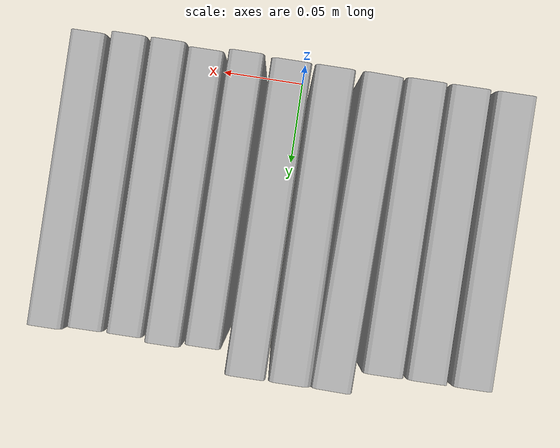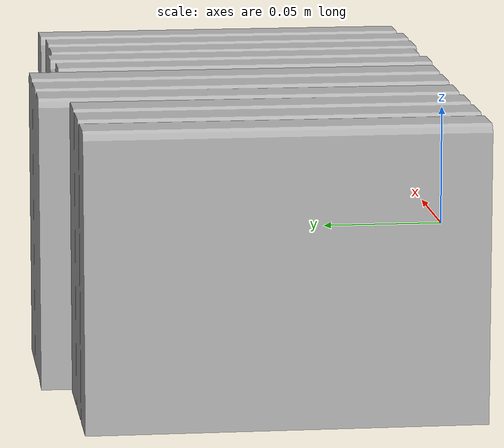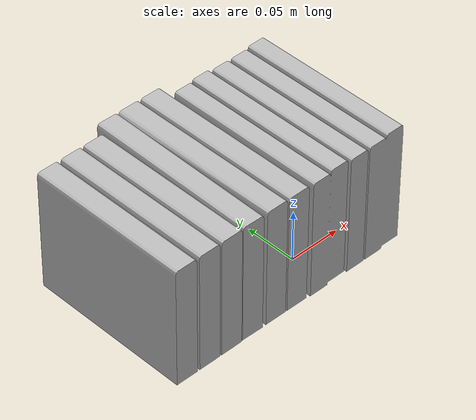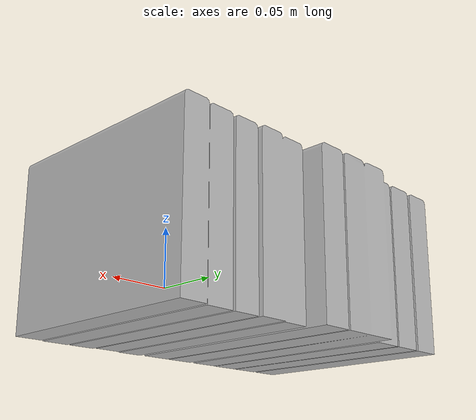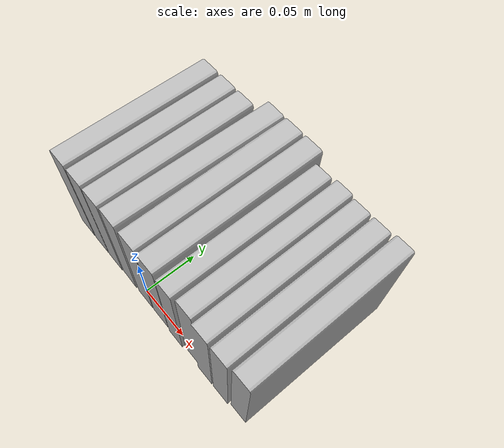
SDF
<?xml version="1.0" ?>
<sdf version="1.4">
  <model name="shelf3_book3_v2">
    <link name="body">
      <pose>0 0 0 0 0 0</pose>
      <inertial>
        <pose>   0.003659   0.083021   0.004443 0 0 0</pose>
        <mass>0.5</mass>
        <inertia>
          <ixx>0.01</ixx>
          <ixy>0</ixy>
          <ixz>0</ixz>
          <iyy>0.01</iyy>
          <iyz>0</iyz>
          <izz>0.01</izz>
        </inertia>
      </inertial>
      <collision name="collision">
        <geometry>
          <mesh>
            <uri>model://bookshelf/shelf3_items/book3_v2/book3_v2.dae</uri>
          </mesh>
        </geometry>
      </collision>
      <visual name="visual">
        <geometry>
          <mesh>
            <uri>model://bookshelf/shelf3_items/book3_v2/book3_v2.dae</uri>
          </mesh>
        </geometry>
      </visual>
    </link>
  </model>
</sdf>
